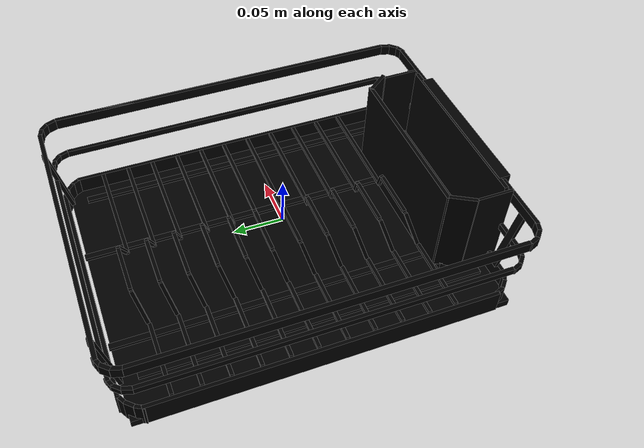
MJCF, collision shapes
<mujoco model="model">
  <option timestep="0.002" gravity="0.0 0.0 -9.81" />
  <compiler angle="radian" />
  <asset>
    <mesh file="visual/DishRack038.obj" name="DishRack038_vis" />
    <texture file="visual/T_BC001.png" name="DishRack038_material" type="2d" />
    <material name="DishRack038_material" rgba="1 1 1 1.0" texture="DishRack038_material" shininess="0.4472135901451111" specular="0.3103448502657381" />
  </asset>
  <default>
    <default class="visual">
      <geom conaffinity="0" contype="0" group="2" type="mesh" density="0" />
    </default>
    <default class="collision">
      <geom group="3" rgba="1 1 1 0.25" density="0" solref="0.004 1" solimp="0.998 0.998 0.001" friction="0.5" />
    </default>
    <default class="spawn">
      <geom group="0" rgba="1 1 1 0.5" contype="0" conaffinity="0" />
      <site group="0" rgba="1 1 1 0.5" />
    </default>
    <default class="region">
      <geom group="1" conaffinity="0" contype="0" rgba="0 1 0 0" mass="0" />
    </default>
  </default>
  <worldbody>
    <body>
      <body name="object">
        <geom mesh="DishRack038_vis" type="mesh" class="visual" material="DishRack038_material" group="2" contype="0" conaffinity="0" density="0" mass="0.5" />
        <geom type="box" pos="-0.00010106 0.00620161 -0.03880779" size="0.1417320966720581 0.18380101025104523 0.004028826951980591" quat="1.0 0.0 0.0 0.0" class="collision" group="3" rgba="0 0 0 0" density="0" friction="0.5" solref="0.004 1" solimp="0.998 0.998 0.001" />
        <geom type="box" pos="0.15064825 0.00692829 0.05575343" size="0.0019343998283147812 0.17795318365097046 0.005243060644716024" quat="1.0 0.0 0.0 0.0" class="collision" group="3" rgba="0 0 0 0" density="0" friction="0.5" solref="0.004 1" solimp="0.998 0.998 0.001" />
        <geom type="box" pos="-0.14850465 0.00692829 0.05575343" size="0.0019343998283147812 0.17795318365097046 0.005243060644716024" quat="1.0 0.0 0.0 0.0" class="collision" group="3" rgba="0 0 0 0" density="0" friction="0.5" solref="0.004 1" solimp="0.998 0.998 0.001" />
        <geom type="box" pos="0.11062972 0.00691955 -0.01968698" size="0.0030806176364421844 0.16700752079486847 0.0015601902268826962" quat="1.0 0.0 0.0 0.0" class="collision" group="3" rgba="0 0 0 0" density="0" friction="0.5" solref="0.004 1" solimp="0.998 0.998 0.001" />
        <geom type="box" pos="0.03522094 0.03599972 -0.01968698" size="0.0030806390568614006 0.1552911102771759 0.0015601902268826962" quat="1.0 0.0 0.0 0.0" class="collision" group="3" rgba="0 0 0 0" density="0" friction="0.5" solref="0.004 1" solimp="0.998 0.998 0.001" />
        <geom type="box" pos="-0.07315524 0.03599972 -0.01968698" size="0.0030806390568614006 0.15529108047485352 0.0015601902268826962" quat="1.0 0.0 0.0 0.0" class="collision" group="3" rgba="0 0 0 0" density="0" friction="0.5" solref="0.004 1" solimp="0.998 0.998 0.001" />
        <geom type="box" pos="-0.10968550 0.00691955 -0.01968698" size="0.0030806188005954027 0.16700752079486847 0.0015601902268826962" quat="1.0 0.0 0.0 0.0" class="collision" group="3" rgba="0 0 0 0" density="0" friction="0.5" solref="0.004 1" solimp="0.998 0.998 0.001" />
        <geom type="box" pos="-0.08750659 -0.13917303 0.01973512" size="0.0018720000516623259 0.012867248617112637 0.04669750854372978" quat="0.25881895422935486 0.0 0.0 0.9659258723258972" class="collision" group="3" rgba="0 0 0 0" density="0" friction="0.5" solref="0.004 1" solimp="0.998 0.998 0.001" />
        <geom type="box" pos="0.08861611 -0.13786611 0.01973512" size="0.001871999935247004 0.012867248617112637 0.04669751226902008" quat="0.948323667049408 0.0 0.0 0.31730467081069946" class="collision" group="3" rgba="0 0 0 0" density="0" friction="0.5" solref="0.004 1" solimp="0.998 0.998 0.001" />
        <geom type="box" pos="0.00137606 -0.12776311 0.01562329" size="0.08304137736558914 0.0019343973835930228 0.04985123500227928" quat="1.0 0.0 0.0 0.0" class="collision" group="3" rgba="0 0 0 0" density="0" friction="0.5" solref="0.004 1" solimp="0.998 0.998 0.001" />
        <geom type="box" pos="-0.09263116 -0.16941470 0.01502538" size="0.0012118302984163165 0.017708344385027885 0.050152309238910675" quat="1.0 0.0 0.0 0.0" class="collision" group="3" rgba="0 0 0 0" density="0" friction="0.5" solref="0.004 1" solimp="0.998 0.998 0.001" />
        <geom type="box" pos="0.09376319 -0.16635282 0.01502538" size="0.001211829949170351 0.017708340659737587 0.050152309238910675" quat="1.0 0.0 0.0 0.0" class="collision" group="3" rgba="0 0 0 0" density="0" friction="0.5" solref="0.004 1" solimp="0.998 0.998 0.001" />
        <geom type="box" pos="0.00164249 -0.18435729 0.01281637" size="0.08869460970163345 0.0019344305619597435 0.05053238943219185" quat="1.0 0.0 0.0 0.0" class="collision" group="3" rgba="0 0 0 0" density="0" friction="0.5" solref="0.004 1" solimp="0.998 0.998 0.001" />
        <geom type="box" pos="-0.00010106 -0.15420651 -0.02895029" size="0.08696458488702774 0.02273535169661045 0.004028826951980591" quat="1.0 0.0 0.0 0.0" class="collision" group="3" rgba="0 0 0 0" density="0" friction="0.5" solref="0.004 1" solimp="0.998 0.998 0.001" />
        <geom type="box" pos="0.11139013 0.19639184 0.01689367" size="0.0018704270478338003 0.0039365473203361034 0.035773422569036484" quat="0.7031527161598206 -0.07467443495988846 0.07467443495988846 0.7031527161598206" class="collision" group="3" rgba="0 0 0 0" density="0" friction="0.5" solref="0.004 1" solimp="0.998 0.998 0.001" />
        <geom type="box" pos="-0.11003633 0.19639184 0.01689367" size="0.0018704270478338003 0.0039365473203361034 0.035773422569036484" quat="0.7031527161598206 -0.07467443495988846 0.07467443495988846 0.7031527161598206" class="collision" group="3" rgba="0 0 0 0" density="0" friction="0.5" solref="0.004 1" solimp="0.998 0.998 0.001" />
        <geom type="box" pos="-0.11003633 -0.18384984 0.01689367" size="0.0018704270478338003 0.0039365473203361034 0.035773422569036484" quat="0.07928650826215744 -0.7026475667953491 0.7049866318702698 0.05471615120768547" class="collision" group="3" rgba="0 0 0 0" density="0" friction="0.5" solref="0.004 1" solimp="0.998 0.998 0.001" />
        <geom type="box" pos="0.11139013 -0.18384984 0.01689367" size="0.0018704270478338003 0.0039365473203361034 0.03577342629432678" quat="0.06701153516769409 -0.7039243578910828 0.703924298286438 0.06701153516769409" class="collision" group="3" rgba="0 0 0 0" density="0" friction="0.5" solref="0.004 1" solimp="0.998 0.998 0.001" />
        <geom type="box" pos="0.08163299 0.15143296 -0.01691486" size="0.05709371343255043 0.0018336840439587831 0.001561641227453947" quat="1.0 0.0 0.0 0.0" class="collision" group="3" rgba="0 0 0 0" density="0" friction="0.5" solref="0.004 1" solimp="0.998 0.998 0.001" />
        <geom type="box" pos="-0.10096855 0.15143296 -0.01691486" size="0.038070905953645706 0.0018336611101403832 0.001561641227453947" quat="1.0 0.0 0.0 0.0" class="collision" group="3" rgba="0 0 0 0" density="0" friction="0.5" solref="0.004 1" solimp="0.998 0.998 0.001" />
        <geom type="box" pos="-0.01812141 0.16025870 0.01337688" size="0.02464320696890354 0.0018336426001042128 0.001561641227453947" quat="1.0 0.0 0.0 0.0" class="collision" group="3" rgba="0 0 0 0" density="0" friction="0.5" solref="0.004 1" solimp="0.998 0.998 0.001" />
        <geom type="box" pos="0.01708473 0.15617359 -0.00138046" size="0.0018336548237130046 0.017500000074505806 0.001561641227453947" quat="0.6532815098762512 0.27059808373451233 0.43045932054519653 0.5609855055809021" class="collision" group="3" rgba="0 0 0 0" density="0" friction="0.5" solref="0.004 1" solimp="0.998 0.998 0.001" />
        <geom type="box" pos="-0.05329486 0.15617359 -0.00138046" size="0.0018336549401283264 0.017500000074505806 0.001561641227453947" quat="0.5609855055809021 -0.4304593503475189 -0.27059805393218994 0.6532815098762512" class="collision" group="3" rgba="0 0 0 0" density="0" friction="0.5" solref="0.004 1" solimp="0.998 0.998 0.001" />
        <geom type="box" pos="-0.05329486 0.12923187 -0.00138046" size="0.0018336549401283264 0.017500000074505806 0.001561641227453947" quat="0.5609855055809021 -0.4304593503475189 -0.27059805393218994 0.6532815098762512" class="collision" group="3" rgba="0 0 0 0" density="0" friction="0.5" solref="0.004 1" solimp="0.998 0.998 0.001" />
        <geom type="box" pos="0.01708473 0.12923187 -0.00138046" size="0.0018336548237130046 0.017500000074505806 0.001561641227453947" quat="0.6532815098762512 0.27059808373451233 0.43045932054519653 0.5609855055809021" class="collision" group="3" rgba="0 0 0 0" density="0" friction="0.5" solref="0.004 1" solimp="0.998 0.998 0.001" />
        <geom type="box" pos="-0.01812141 0.13331696 0.01337688" size="0.02464320696890354 0.0018336429493501782 0.001561641227453947" quat="1.0 0.0 0.0 0.0" class="collision" group="3" rgba="0 0 0 0" density="0" friction="0.5" solref="0.004 1" solimp="0.998 0.998 0.001" />
        <geom type="box" pos="-0.10096855 0.12449124 -0.01691486" size="0.038070905953645706 0.0018336611101403832 0.001561641227453947" quat="1.0 0.0 0.0 0.0" class="collision" group="3" rgba="0 0 0 0" density="0" friction="0.5" solref="0.004 1" solimp="0.998 0.998 0.001" />
        <geom type="box" pos="0.08163299 0.12449124 -0.01691486" size="0.05709371343255043 0.0018336819484829903 0.001561641227453947" quat="1.0 0.0 0.0 0.0" class="collision" group="3" rgba="0 0 0 0" density="0" friction="0.5" solref="0.004 1" solimp="0.998 0.998 0.001" />
        <geom type="box" pos="0.08163299 0.09791256 -0.01691486" size="0.05709371343255043 0.001833681482821703 0.001561641227453947" quat="1.0 0.0 0.0 0.0" class="collision" group="3" rgba="0 0 0 0" density="0" friction="0.5" solref="0.004 1" solimp="0.998 0.998 0.001" />
        <geom type="box" pos="-0.10096855 0.09791256 -0.01691486" size="0.038070905953645706 0.0018336611101403832 0.001561641227453947" quat="1.0 0.0 0.0 0.0" class="collision" group="3" rgba="0 0 0 0" density="0" friction="0.5" solref="0.004 1" solimp="0.998 0.998 0.001" />
        <geom type="box" pos="-0.01812141 0.10673828 0.01337688" size="0.02464320696890354 0.0018336448119953275 0.001561641227453947" quat="1.0 0.0 0.0 0.0" class="collision" group="3" rgba="0 0 0 0" density="0" friction="0.5" solref="0.004 1" solimp="0.998 0.998 0.001" />
        <geom type="box" pos="0.01708473 0.10265319 -0.00138046" size="0.0018336548237130046 0.017500000074505806 0.001561641227453947" quat="0.6532815098762512 0.27059808373451233 0.43045932054519653 0.5609855055809021" class="collision" group="3" rgba="0 0 0 0" density="0" friction="0.5" solref="0.004 1" solimp="0.998 0.998 0.001" />
        <geom type="box" pos="-0.05329486 0.10265319 -0.00138046" size="0.0018336549401283264 0.017500000074505806 0.001561641227453947" quat="0.5609855055809021 -0.4304593503475189 -0.27059805393218994 0.6532815098762512" class="collision" group="3" rgba="0 0 0 0" density="0" friction="0.5" solref="0.004 1" solimp="0.998 0.998 0.001" />
        <geom type="box" pos="-0.05329486 0.07484508 -0.00138046" size="0.0018336549401283264 0.017500000074505806 0.001561641227453947" quat="0.5609855055809021 -0.4304593503475189 -0.27059805393218994 0.6532815098762512" class="collision" group="3" rgba="0 0 0 0" density="0" friction="0.5" solref="0.004 1" solimp="0.998 0.998 0.001" />
        <geom type="box" pos="0.01708473 0.07484508 -0.00138046" size="0.0018336548237130046 0.017500000074505806 0.001561641227453947" quat="0.6532815098762512 0.27059808373451233 0.43045932054519653 0.5609855055809021" class="collision" group="3" rgba="0 0 0 0" density="0" friction="0.5" solref="0.004 1" solimp="0.998 0.998 0.001" />
        <geom type="box" pos="-0.01812141 0.07893017 0.01337688" size="0.02464320696890354 0.001833645161241293 0.001561641227453947" quat="1.0 0.0 0.0 0.0" class="collision" group="3" rgba="0 0 0 0" density="0" friction="0.5" solref="0.004 1" solimp="0.998 0.998 0.001" />
        <geom type="box" pos="-0.10096855 0.07010445 -0.01691486" size="0.038070905953645706 0.0018336611101403832 0.001561641227453947" quat="1.0 0.0 0.0 0.0" class="collision" group="3" rgba="0 0 0 0" density="0" friction="0.5" solref="0.004 1" solimp="0.998 0.998 0.001" />
        <geom type="box" pos="0.08163299 0.07010445 -0.01691486" size="0.05709371343255043 0.00183367938734591 0.001561641227453947" quat="1.0 0.0 0.0 0.0" class="collision" group="3" rgba="0 0 0 0" density="0" friction="0.5" solref="0.004 1" solimp="0.998 0.998 0.001" />
        <geom type="box" pos="0.08163299 0.04321341 -0.01691486" size="0.05709371343255043 0.0018336789216846228 0.001561641227453947" quat="1.0 0.0 0.0 0.0" class="collision" group="3" rgba="0 0 0 0" density="0" friction="0.5" solref="0.004 1" solimp="0.998 0.998 0.001" />
        <geom type="box" pos="-0.10096855 0.04321341 -0.01691486" size="0.038070905953645706 0.0018336611101403832 0.001561641227453947" quat="1.0 0.0 0.0 0.0" class="collision" group="3" rgba="0 0 0 0" density="0" friction="0.5" solref="0.004 1" solimp="0.998 0.998 0.001" />
        <geom type="box" pos="-0.01812141 0.05203913 0.01337688" size="0.02464320696890354 0.0018336470238864422 0.001561641227453947" quat="1.0 0.0 0.0 0.0" class="collision" group="3" rgba="0 0 0 0" density="0" friction="0.5" solref="0.004 1" solimp="0.998 0.998 0.001" />
        <geom type="box" pos="0.01708473 0.04795404 -0.00138046" size="0.0018336548237130046 0.017500000074505806 0.001561641227453947" quat="0.6532815098762512 0.27059808373451233 0.43045932054519653 0.5609855055809021" class="collision" group="3" rgba="0 0 0 0" density="0" friction="0.5" solref="0.004 1" solimp="0.998 0.998 0.001" />
        <geom type="box" pos="-0.05329486 0.04795404 -0.00138046" size="0.0018336549401283264 0.017500000074505806 0.001561641227453947" quat="0.5609855055809021 -0.4304593503475189 -0.27059805393218994 0.6532815098762512" class="collision" group="3" rgba="0 0 0 0" density="0" friction="0.5" solref="0.004 1" solimp="0.998 0.998 0.001" />
        <geom type="box" pos="-0.05329486 0.02192574 -0.00138046" size="0.0018336549401283264 0.017500000074505806 0.001561641227453947" quat="0.5609855055809021 -0.4304593503475189 -0.27059805393218994 0.6532815098762512" class="collision" group="3" rgba="0 0 0 0" density="0" friction="0.5" solref="0.004 1" solimp="0.998 0.998 0.001" />
        <geom type="box" pos="0.01708473 0.02192574 -0.00138046" size="0.0018336548237130046 0.017500000074505806 0.001561641227453947" quat="0.6532815098762512 0.27059808373451233 0.43045932054519653 0.5609855055809021" class="collision" group="3" rgba="0 0 0 0" density="0" friction="0.5" solref="0.004 1" solimp="0.998 0.998 0.001" />
        <geom type="box" pos="-0.01812141 0.02601083 0.01337688" size="0.02464320696890354 0.0018336474895477295 0.001561641227453947" quat="1.0 0.0 0.0 0.0" class="collision" group="3" rgba="0 0 0 0" density="0" friction="0.5" solref="0.004 1" solimp="0.998 0.998 0.001" />
        <geom type="box" pos="-0.10096855 0.01718511 -0.01691486" size="0.038070905953645706 0.0018336611101403832 0.001561641227453947" quat="1.0 0.0 0.0 0.0" class="collision" group="3" rgba="0 0 0 0" density="0" friction="0.5" solref="0.004 1" solimp="0.998 0.998 0.001" />
        <geom type="box" pos="0.08163299 0.01718511 -0.01691486" size="0.05709371343255043 0.001833676709793508 0.001561641227453947" quat="1.0 0.0 0.0 0.0" class="collision" group="3" rgba="0 0 0 0" density="0" friction="0.5" solref="0.004 1" solimp="0.998 0.998 0.001" />
        <geom type="box" pos="0.08163299 -0.01035905 -0.01691486" size="0.05709371343255043 0.0018336762441322207 0.001561641227453947" quat="1.0 0.0 0.0 0.0" class="collision" group="3" rgba="0 0 0 0" density="0" friction="0.5" solref="0.004 1" solimp="0.998 0.998 0.001" />
        <geom type="box" pos="-0.10096855 -0.01035905 -0.01691486" size="0.038070905953645706 0.0018336611101403832 0.001561641227453947" quat="1.0 0.0 0.0 0.0" class="collision" group="3" rgba="0 0 0 0" density="0" friction="0.5" solref="0.004 1" solimp="0.998 0.998 0.001" />
        <geom type="box" pos="-0.01812141 -0.00153333 0.01337688" size="0.02464320696890354 0.0018336493521928787 0.001561641227453947" quat="1.0 0.0 0.0 0.0" class="collision" group="3" rgba="0 0 0 0" density="0" friction="0.5" solref="0.004 1" solimp="0.998 0.998 0.001" />
        <geom type="box" pos="0.01708473 -0.00561843 -0.00138046" size="0.0018336548237130046 0.017500000074505806 0.001561641227453947" quat="0.6532815098762512 0.27059808373451233 0.43045932054519653 0.5609855055809021" class="collision" group="3" rgba="0 0 0 0" density="0" friction="0.5" solref="0.004 1" solimp="0.998 0.998 0.001" />
        <geom type="box" pos="-0.05329486 -0.00561843 -0.00138046" size="0.0018336549401283264 0.017500000074505806 0.001561641227453947" quat="0.5609855055809021 -0.4304593503475189 -0.27059805393218994 0.6532815098762512" class="collision" group="3" rgba="0 0 0 0" density="0" friction="0.5" solref="0.004 1" solimp="0.998 0.998 0.001" />
        <geom type="box" pos="-0.05329486 -0.03275298 -0.00138046" size="0.0018336549401283264 0.017500000074505806 0.001561641227453947" quat="0.5609855055809021 -0.4304593503475189 -0.27059805393218994 0.6532815098762512" class="collision" group="3" rgba="0 0 0 0" density="0" friction="0.5" solref="0.004 1" solimp="0.998 0.998 0.001" />
        <geom type="box" pos="0.01708473 -0.03275298 -0.00138046" size="0.0018336548237130046 0.017500000074505806 0.001561641227453947" quat="0.6532815098762512 0.27059808373451233 0.43045932054519653 0.5609855055809021" class="collision" group="3" rgba="0 0 0 0" density="0" friction="0.5" solref="0.004 1" solimp="0.998 0.998 0.001" />
        <geom type="box" pos="-0.01812141 -0.02866788 0.01337688" size="0.02464320696890354 0.0018336497014388442 0.001561641227453947" quat="1.0 0.0 0.0 0.0" class="collision" group="3" rgba="0 0 0 0" density="0" friction="0.5" solref="0.004 1" solimp="0.998 0.998 0.001" />
        <geom type="box" pos="-0.10096855 -0.03749360 -0.01691486" size="0.038070905953645706 0.0018336611101403832 0.001561641227453947" quat="1.0 0.0 0.0 0.0" class="collision" group="3" rgba="0 0 0 0" density="0" friction="0.5" solref="0.004 1" solimp="0.998 0.998 0.001" />
        <geom type="box" pos="0.08163299 -0.03749360 -0.01691486" size="0.05709371343255043 0.0018336741486564279 0.001561641227453947" quat="1.0 0.0 0.0 0.0" class="collision" group="3" rgba="0 0 0 0" density="0" friction="0.5" solref="0.004 1" solimp="0.998 0.998 0.001" />
        <geom type="box" pos="0.08163299 -0.06463115 -0.01691486" size="0.05709371343255043 0.0018336736829951406 0.001561641227453947" quat="1.0 0.0 0.0 0.0" class="collision" group="3" rgba="0 0 0 0" density="0" friction="0.5" solref="0.004 1" solimp="0.998 0.998 0.001" />
        <geom type="box" pos="-0.10096855 -0.06463115 -0.01691486" size="0.038070905953645706 0.0018336611101403832 0.001561641227453947" quat="1.0 0.0 0.0 0.0" class="collision" group="3" rgba="0 0 0 0" density="0" friction="0.5" solref="0.004 1" solimp="0.998 0.998 0.001" />
        <geom type="box" pos="-0.01812141 -0.05580543 0.01337688" size="0.02464320696890354 0.0018336515640839934 0.001561641227453947" quat="1.0 0.0 0.0 0.0" class="collision" group="3" rgba="0 0 0 0" density="0" friction="0.5" solref="0.004 1" solimp="0.998 0.998 0.001" />
        <geom type="box" pos="0.01708473 -0.05989053 -0.00138046" size="0.0018336548237130046 0.017500000074505806 0.001561641227453947" quat="0.6532815098762512 0.27059808373451233 0.43045932054519653 0.5609855055809021" class="collision" group="3" rgba="0 0 0 0" density="0" friction="0.5" solref="0.004 1" solimp="0.998 0.998 0.001" />
        <geom type="box" pos="-0.05329486 -0.05989053 -0.00138046" size="0.0018336549401283264 0.017500000074505806 0.001561641227453947" quat="0.5609855055809021 -0.4304593503475189 -0.27059805393218994 0.6532815098762512" class="collision" group="3" rgba="0 0 0 0" density="0" friction="0.5" solref="0.004 1" solimp="0.998 0.998 0.001" />
        <geom type="box" pos="-0.05329486 -0.08737624 -0.00138046" size="0.0018336549401283264 0.017500000074505806 0.001561641227453947" quat="0.5609855055809021 -0.4304593503475189 -0.27059805393218994 0.6532815098762512" class="collision" group="3" rgba="0 0 0 0" density="0" friction="0.5" solref="0.004 1" solimp="0.998 0.998 0.001" />
        <geom type="box" pos="0.01708473 -0.08737624 -0.00138046" size="0.0018336548237130046 0.017500000074505806 0.001561641227453947" quat="0.6532815098762512 0.27059808373451233 0.43045932054519653 0.5609855055809021" class="collision" group="3" rgba="0 0 0 0" density="0" friction="0.5" solref="0.004 1" solimp="0.998 0.998 0.001" />
        <geom type="box" pos="-0.01812141 -0.08329114 0.01337688" size="0.02464320696890354 0.001833651913329959 0.001561641227453947" quat="1.0 0.0 0.0 0.0" class="collision" group="3" rgba="0 0 0 0" density="0" friction="0.5" solref="0.004 1" solimp="0.998 0.998 0.001" />
        <geom type="box" pos="-0.10096855 -0.09211686 -0.01691486" size="0.038070905953645706 0.0018336611101403832 0.001561641227453947" quat="1.0 0.0 0.0 0.0" class="collision" group="3" rgba="0 0 0 0" density="0" friction="0.5" solref="0.004 1" solimp="0.998 0.998 0.001" />
        <geom type="box" pos="0.08163299 -0.09211686 -0.01691486" size="0.05709371343255043 0.0018336715875193477 0.001561641227453947" quat="1.0 0.0 0.0 0.0" class="collision" group="3" rgba="0 0 0 0" density="0" friction="0.5" solref="0.004 1" solimp="0.998 0.998 0.001" />
        <geom type="box" pos="0.08163299 -0.11884170 -0.01691486" size="0.05709371343255043 0.0018336711218580604 0.001561641227453947" quat="1.0 0.0 0.0 0.0" class="collision" group="3" rgba="0 0 0 0" density="0" friction="0.5" solref="0.004 1" solimp="0.998 0.998 0.001" />
        <geom type="box" pos="-0.10096855 -0.11884170 -0.01691486" size="0.038070905953645706 0.0018336611101403832 0.001561641227453947" quat="1.0 0.0 0.0 0.0" class="collision" group="3" rgba="0 0 0 0" density="0" friction="0.5" solref="0.004 1" solimp="0.998 0.998 0.001" />
        <geom type="box" pos="-0.01812141 -0.11001598 0.01337688" size="0.02464320696890354 0.0018336537759751081 0.001561641227453947" quat="1.0 0.0 0.0 0.0" class="collision" group="3" rgba="0 0 0 0" density="0" friction="0.5" solref="0.004 1" solimp="0.998 0.998 0.001" />
        <geom type="box" pos="0.01708473 -0.11410108 -0.00138046" size="0.0018336548237130046 0.017500000074505806 0.001561641227453947" quat="0.6532815098762512 0.27059808373451233 0.43045932054519653 0.5609855055809021" class="collision" group="3" rgba="0 0 0 0" density="0" friction="0.5" solref="0.004 1" solimp="0.998 0.998 0.001" />
        <geom type="box" pos="-0.05329486 -0.11410108 -0.00138046" size="0.0018336549401283264 0.017500000074505806 0.001561641227453947" quat="0.5609855055809021 -0.4304593503475189 -0.27059805393218994 0.6532815098762512" class="collision" group="3" rgba="0 0 0 0" density="0" friction="0.5" solref="0.004 1" solimp="0.998 0.998 0.001" />
        <geom type="box" pos="-0.09830546 -0.13930064 -0.05172475" size="0.0019343998283147812 0.020663361996412277 0.012003922834992409" quat="0.38268330693244934 0.0 0.0 0.9238795638084412" class="collision" group="3" rgba="0 0 0 0" density="0" friction="0.5" solref="0.004 1" solimp="0.998 0.998 0.001" />
        <geom type="box" pos="0.09959303 -0.13930064 -0.05172475" size="0.0019343998283147812 0.020663361996412277 0.012003922834992409" quat="0.9238795042037964 0.0 0.0 0.3826834559440613" class="collision" group="3" rgba="0 0 0 0" density="0" friction="0.5" solref="0.004 1" solimp="0.998 0.998 0.001" />
        <geom type="box" pos="-0.10977543 0.14478177 -0.05172475" size="0.0019343998283147812 0.020663361996412277 0.012003922834992409" quat="0.9588197469711304 0.0 0.0 0.28401535749435425" class="collision" group="3" rgba="0 0 0 0" density="0" friction="0.5" solref="0.004 1" solimp="0.998 0.998 0.001" />
        <geom type="box" pos="0.11165385 0.14478177 -0.05172475" size="0.0019343998283147812 0.020663361996412277 0.012003922834992409" quat="0.2756373882293701 0.0 0.0 0.9612616896629333" class="collision" group="3" rgba="0 0 0 0" density="0" friction="0.5" solref="0.004 1" solimp="0.998 0.998 0.001" />
        <geom type="box" pos="-0.00010106 -0.11403123 -0.05640951" size="0.015950217843055725 0.09116698801517487 0.004028826951980591" quat="1.0 0.0 0.0 0.0" class="collision" group="3" rgba="0 0 0 0" density="0" friction="0.5" solref="0.004 1" solimp="0.998 0.998 0.001" />
        <geom type="box" pos="-0.14721278 0.18922126 0.05575343" size="0.0019343998283147812 0.004999999888241291 0.005243060644716024" quat="0.9886575937271118 0.0 -0.0 -0.15018707513809204" class="collision" group="3" rgba="0 0 0 0" density="0" friction="0.5" solref="0.004 1" solimp="0.998 0.998 0.001" />
        <geom type="box" pos="-0.14304650 0.19690786 0.05575343" size="0.0019343998283147812 0.005000000353902578 0.005243060644716024" quat="0.9324401617050171 0.0 -0.0 -0.3613244295120239" class="collision" group="3" rgba="0 0 0 0" density="0" friction="0.5" solref="0.004 1" solimp="0.998 0.998 0.001" />
        <geom type="box" pos="-0.13592510 0.20180079 0.05575343" size="0.0019343998283147812 0.005000000353902578 0.005243060644716024" quat="0.8246766924858093 0.0 -0.0 -0.5656044483184814" class="collision" group="3" rgba="0 0 0 0" density="0" friction="0.5" solref="0.004 1" solimp="0.998 0.998 0.001" />
        <geom type="box" pos="0.14868575 0.18948296 0.05575343" size="0.0019343998283147812 0.004999999888241291 0.005243060644716024" quat="0.18319177627563477 0.0 -0.0 -0.9830771684646606" class="collision" group="3" rgba="0 0 0 0" density="0" friction="0.5" solref="0.004 1" solimp="0.998 0.998 0.001" />
        <geom type="box" pos="0.14355058 0.19704036 0.05575343" size="0.0019343998283147812 0.005000000353902578 0.005243060644716024" quat="0.4038398265838623 0.0 -0.0 -0.9148297309875488" class="collision" group="3" rgba="0 0 0 0" density="0" friction="0.5" solref="0.004 1" solimp="0.998 0.998 0.001" />
        <geom type="box" pos="0.13586400 0.20120664 0.05575343" size="0.0019343995954841375 0.004999999888241291 0.005243060644716024" quat="0.5928882956504822 0.0 -0.0 -0.8052847385406494" class="collision" group="3" rgba="0 0 0 0" density="0" friction="0.5" solref="0.004 1" solimp="0.998 0.998 0.001" />
        <geom type="box" pos="-0.00071768 0.20252743 0.05575343" size="0.13442736864089966 0.0019344143802300096 0.005243079271167517" quat="1.0 0.0 0.0 0.0" class="collision" group="3" rgba="0 0 0 0" density="0" friction="0.5" solref="0.004 1" solimp="0.998 0.998 0.001" />
        <geom type="box" pos="0.00215944 -0.18897153 0.05575343" size="0.13442733883857727 0.0019344259053468704 0.005243077874183655" quat="1.0 0.0 0.0 0.0" class="collision" group="3" rgba="0 0 0 0" density="0" friction="0.5" solref="0.004 1" solimp="0.998 0.998 0.001" />
        <geom type="box" pos="-0.13442225 -0.18765077 0.05575343" size="0.0019343998283147812 0.004999999888241291 0.005243060644716024" quat="0.8052846789360046 0.0 0.0 0.592888355255127" class="collision" group="3" rgba="0 0 0 0" density="0" friction="0.5" solref="0.004 1" solimp="0.998 0.998 0.001" />
        <geom type="box" pos="-0.14210880 -0.18348449 0.05575343" size="0.0019343998283147812 0.005000000353902578 0.005243060644716024" quat="0.9148297309875488 0.0 0.0 0.4038397967815399" class="collision" group="3" rgba="0 0 0 0" density="0" friction="0.5" solref="0.004 1" solimp="0.998 0.998 0.001" />
        <geom type="box" pos="-0.14753464 -0.17573330 0.05575343" size="0.0019343998283147812 0.004999999888241291 0.005243060644716024" quat="0.9830772280693054 0.0 0.0 0.18319173157215118" class="collision" group="3" rgba="0 0 0 0" density="0" friction="0.5" solref="0.004 1" solimp="0.998 0.998 0.001" />
        <geom type="box" pos="0.13791707 -0.18817294 0.05575343" size="0.0019343998283147812 0.004999999888241291 0.005243060644716024" quat="0.5656043291091919 0.0 0.0 0.8246767520904541" class="collision" group="3" rgba="0 0 0 0" density="0" friction="0.5" solref="0.004 1" solimp="0.998 0.998 0.001" />
        <geom type="box" pos="0.14503845 -0.18328001 0.05575343" size="0.0019343998283147812 0.005000000353902578 0.005243060644716024" quat="0.36132439970970154 0.0 0.0 0.9324401617050171" class="collision" group="3" rgba="0 0 0 0" density="0" friction="0.5" solref="0.004 1" solimp="0.998 0.998 0.001" />
        <geom type="box" pos="0.14920473 -0.17559341 0.05575343" size="0.0019343998283147812 0.004999999888241291 0.005243060644716024" quat="0.15018685162067413 0.0 0.0 0.9886576533317566" class="collision" group="3" rgba="0 0 0 0" density="0" friction="0.5" solref="0.004 1" solimp="0.998 0.998 0.001" />
        <geom type="box" pos="0.15049658 0.00669958 0.05575343" size="0.0019344267202541232 0.17795318365097046 0.005243060644716024" quat="1.0 0.0 0.0 0.0" class="collision" group="3" rgba="0 0 0 0" density="0" friction="0.5" solref="0.004 1" solimp="0.998 0.998 0.001" />
        <geom type="box" pos="0.14604668 0.00670192 0.01810150" size="0.001876908470876515 0.17410312592983246 0.0032514475751668215" quat="1.0 0.0 0.0 0.0" class="collision" group="3" rgba="0 0 0 0" density="0" friction="0.5" solref="0.004 1" solimp="0.998 0.998 0.001" />
        <geom type="box" pos="0.14479324 -0.17164710 0.01810150" size="0.0018782691331580281 0.004888265859335661 0.0032514389604330063" quat="0.15018685162067413 0.0 0.0 0.9886576533317566" class="collision" group="3" rgba="0 0 0 0" density="0" friction="0.5" solref="0.004 1" solimp="0.998 0.998 0.001" />
        <geom type="box" pos="0.14075084 -0.17916740 0.01810150" size="0.0018840119009837508 0.004873478785157204 0.0032514389604330063" quat="0.36132439970970154 0.0 0.0 0.9324401617050171" class="collision" group="3" rgba="0 0 0 0" density="0" friction="0.5" solref="0.004 1" solimp="0.998 0.998 0.001" />
        <geom type="box" pos="0.13384121 -0.18395448 0.01810150" size="0.001890523824840784 0.004856602288782597 0.0032514389604330063" quat="0.5656043291091919 0.0 0.0 0.8246767520904541" class="collision" group="3" rgba="0 0 0 0" density="0" friction="0.5" solref="0.004 1" solimp="0.998 0.998 0.001" />
        <geom type="box" pos="-0.14312284 -0.17178397 0.01810150" size="0.0018789219902828336 0.0048865885473787785 0.0032514389604330063" quat="0.9830772280693054 0.0 0.0 0.18319173157215118" class="collision" group="3" rgba="0 0 0 0" density="0" friction="0.5" solref="0.004 1" solimp="0.998 0.998 0.001" />
        <geom type="box" pos="-0.13785834 -0.17936747 0.01810150" size="0.00188545195851475 0.00486975722014904 0.0032514389604330063" quat="0.9148297309875488 0.0 0.0 0.4038397967815399" class="collision" group="3" rgba="0 0 0 0" density="0" friction="0.5" solref="0.004 1" solimp="0.998 0.998 0.001" />
        <geom type="box" pos="-0.13040033 -0.18344361 0.01810150" size="0.0018911726074293256 0.004854913335293531 0.0032514389604330063" quat="0.8052846789360046 0.0 0.0 0.592888355255127" class="collision" group="3" rgba="0 0 0 0" density="0" friction="0.5" solref="0.004 1" solimp="0.998 0.998 0.001" />
        <geom type="box" pos="0.00212022 -0.18473579 0.01810150" size="0.1304296851158142 0.0018925695912912488 0.003251435002312064" quat="1.0 0.0 0.0 0.0" class="collision" group="3" rgba="0 0 0 0" density="0" friction="0.5" solref="0.004 1" solimp="0.998 0.998 0.001" />
        <geom type="box" pos="-0.00067136 0.19829300 0.01810150" size="0.1304297149181366 0.0018925584154203534 0.0032514354679733515" quat="1.0 0.0 0.0 0.0" class="collision" group="3" rgba="0 0 0 0" density="0" friction="0.5" solref="0.004 1" solimp="0.998 0.998 0.001" />
        <geom type="box" pos="0.13184918 0.19700079 0.01810150" size="0.0018911726074293256 0.004854913335293531 0.0032514389604330063" quat="0.5928882956504822 0.0 -0.0 -0.8052847385406494" class="collision" group="3" rgba="0 0 0 0" density="0" friction="0.5" solref="0.004 1" solimp="0.998 0.998 0.001" />
        <geom type="box" pos="0.13930723 0.19292465 0.01810150" size="0.001885451260022819 0.00486975722014904 0.0032514389604330063" quat="0.4038398265838623 0.0 -0.0 -0.9148297309875488" class="collision" group="3" rgba="0 0 0 0" density="0" friction="0.5" solref="0.004 1" solimp="0.998 0.998 0.001" />
        <geom type="box" pos="0.14428970 0.18553074 0.01810150" size="0.0018789214082062244 0.0048865885473787785 0.0032514389604330063" quat="0.18319177627563477 0.0 -0.0 -0.9830771684646606" class="collision" group="3" rgba="0 0 0 0" density="0" friction="0.5" solref="0.004 1" solimp="0.998 0.998 0.001" />
        <geom type="box" pos="-0.13185850 0.19758208 0.01810150" size="0.0018905233591794968 0.004856601357460022 0.0032514389604330063" quat="0.8246766924858093 0.0 -0.0 -0.5656044483184814" class="collision" group="3" rgba="0 0 0 0" density="0" friction="0.5" solref="0.004 1" solimp="0.998 0.998 0.001" />
        <geom type="box" pos="-0.13876816 0.19279501 0.01810150" size="0.0018840114353224635 0.004873478785157204 0.0032514389604330063" quat="0.9324401617050171 0.0 -0.0 -0.3613244295120239" class="collision" group="3" rgba="0 0 0 0" density="0" friction="0.5" solref="0.004 1" solimp="0.998 0.998 0.001" />
        <geom type="box" pos="-0.14281054 0.18527471 0.01810150" size="0.0018782691331580281 0.004888266324996948 0.0032514389604330063" quat="0.9886575937271118 0.0 -0.0 -0.15018707513809204" class="collision" group="3" rgba="0 0 0 0" density="0" friction="0.5" solref="0.004 1" solimp="0.998 0.998 0.001" />
        <geom type="box" pos="-0.14406401 0.00692569 0.01810150" size="0.001876882161013782 0.17410312592983246 0.0032514447811990976" quat="1.0 0.0 0.0 0.0" class="collision" group="3" rgba="0 0 0 0" density="0" friction="0.5" solref="0.004 1" solimp="0.998 0.998 0.001" />
        <geom type="box" pos="0.00186114 -0.19015996 0.05811753" size="0.07621897757053375 0.005815710406750441 0.005243060644716024" quat="1.0 0.0 0.0 0.0" class="collision" group="3" rgba="0 0 0 0" density="0" friction="0.5" solref="0.004 1" solimp="0.998 0.998 0.001" />
        <geom type="box" pos="-0.14102972 0.00692365 -0.03015992" size="0.0018375801155343652 0.1710883527994156 0.01257963478565216" quat="1.0 0.0 0.0 0.0" class="collision" group="3" rgba="0 0 0 0" density="0" friction="0.5" solref="0.004 1" solimp="0.998 0.998 0.001" />
        <geom type="box" pos="-0.13995019 0.17927989 -0.03015992" size="0.0018395406659692526 0.004802063573151827 0.01257963478565216" quat="0.9729527831077576 0.0 -0.0 -0.23100405931472778" class="collision" group="3" rgba="0 0 0 0" density="0" friction="0.5" solref="0.004 1" solimp="0.998 0.998 0.001" />
        <geom type="box" pos="-0.13422022 0.18701458 -0.03015992" size="0.0018476673867553473 0.004781088791787624 0.01257963478565216" quat="0.9324401617050171 0.0 -0.0 -0.3613244295120239" class="collision" group="3" rgba="0 0 0 0" density="0" friction="0.5" solref="0.004 1" solimp="0.998 0.998 0.001" />
        <geom type="box" pos="-0.12715987 0.19245718 -0.03015992" size="0.0018569017993286252 0.004757195711135864 0.01257963478565216" quat="0.8657304644584656 0.0 -0.0 -0.5005105137825012" class="collision" group="3" rgba="0 0 0 0" density="0" friction="0.5" solref="0.004 1" solimp="0.998 0.998 0.001" />
        <geom type="box" pos="0.14029341 0.18080552 -0.03015992" size="0.0018404633738100529 0.00479968311265111 0.01257963478565216" quat="0.2574600875377655 0.0 -0.0 -0.9662889242172241" class="collision" group="3" rgba="0 0 0 0" density="0" friction="0.5" solref="0.004 1" solimp="0.998 0.998 0.001" />
        <geom type="box" pos="0.13479992 0.18733299 -0.03015992" size="0.0018497076816856861 0.004775816109031439 0.01257963478565216" quat="0.4038398265838623 0.0 -0.0 -0.9148297309875488" class="collision" group="3" rgba="0 0 0 0" density="0" friction="0.5" solref="0.004 1" solimp="0.998 0.998 0.001" />
        <geom type="box" pos="0.12762111 0.19248720 -0.03015992" size="0.001857822760939598 0.004754809662699699 0.01257963478565216" quat="0.5173319578170776 0.0 -0.0 -0.8557848334312439" class="collision" group="3" rgba="0 0 0 0" density="0" friction="0.5" solref="0.004 1" solimp="0.998 0.998 0.001" />
        <geom type="box" pos="-0.00060935 0.19497725 -0.03015992" size="0.12482673674821854 0.0018597865710034966 0.01257963478565216" quat="1.0 0.0 0.0 0.0" class="collision" group="3" rgba="0 0 0 0" density="0" friction="0.5" solref="0.004 1" solimp="0.998 0.998 0.001" />
        <geom type="box" pos="0.00202888 -0.18032506 -0.03015992" size="0.12482673674821854 0.0018597975140437484 0.01257963478565216" quat="1.0 0.0 0.0 0.0" class="collision" group="3" rgba="0 0 0 0" density="0" friction="0.5" solref="0.004 1" solimp="0.998 0.998 0.001" />
        <geom type="box" pos="-0.12694724 -0.17768720 -0.03015992" size="0.0018578225281089544 0.004754809662699699 0.01257963478565216" quat="0.8734379410743713 0.0 0.0 0.48693546652793884" class="collision" group="3" rgba="0 0 0 0" density="0" friction="0.5" solref="0.004 1" solimp="0.998 0.998 0.001" />
        <geom type="box" pos="-0.13339443 -0.17323722 -0.03015992" size="0.0018497082637622952 0.0047758156433701515 0.01257963478565216" quat="0.9148297309875488 0.0 0.0 0.4038397967815399" class="collision" group="3" rgba="0 0 0 0" density="0" friction="0.5" solref="0.004 1" solimp="0.998 0.998 0.001" />
        <geom type="box" pos="-0.13854869 -0.16578501 -0.03015992" size="0.001840463955886662 0.00479968311265111 0.01257963478565216" quat="0.9830772280693054 0.0 0.0 0.18319173157215118" class="collision" group="3" rgba="0 0 0 0" density="0" friction="0.5" solref="0.004 1" solimp="0.998 0.998 0.001" />
        <geom type="box" pos="0.12822061 -0.17769752 -0.03015992" size="0.0018569017993286252 0.004757196642458439 0.01257963478565216" quat="0.5656043291091919 0.0 0.0 0.8246767520904541" class="collision" group="3" rgba="0 0 0 0" density="0" friction="0.5" solref="0.004 1" solimp="0.998 0.998 0.001" />
        <geom type="box" pos="0.13577649 -0.17262906 -0.03015992" size="0.0018476677360013127 0.004781089723110199 0.01257963478565216" quat="0.36132439970970154 0.0 0.0 0.9324401617050171" class="collision" group="3" rgba="0 0 0 0" density="0" friction="0.5" solref="0.004 1" solimp="0.998 0.998 0.001" />
        <geom type="box" pos="0.14013791 -0.16523406 -0.03015992" size="0.0018395406659692526 0.004802064038813114 0.01257963478565216" quat="0.15018685162067413 0.0 0.0 0.9886576533317566" class="collision" group="3" rgba="0 0 0 0" density="0" friction="0.5" solref="0.004 1" solimp="0.998 0.998 0.001" />
        <geom type="box" pos="0.14259581 0.00736014 -0.03015992" size="0.0018376059597358108 0.1710883527994156 0.01257963478565216" quat="1.0 0.0 0.0 0.0" class="collision" group="3" rgba="0 0 0 0" density="0" friction="0.5" solref="0.004 1" solimp="0.998 0.998 0.001" />
        <geom class="region" name="reg_int_0" type="box" pos="-0.09844253 0.031369635 0.08175372" size="0.03485633 0.154785865 0.09786078000000001" />
        <geom class="region" name="reg_int_1" type="box" pos="0.080647675 0.03136267 0.081744655" size="0.052087165 0.15479283 0.09786984500000001" />
        <geom size="0.15122874 0.20622101 0.06874034" pos="0.0 0.0 0.0" name="reg_bbox" class="region" type="box" quat="1.0 0.0 0.0 0.0" />
      </body>
    </body>
  </worldbody>
  <actuator />
</mujoco>
